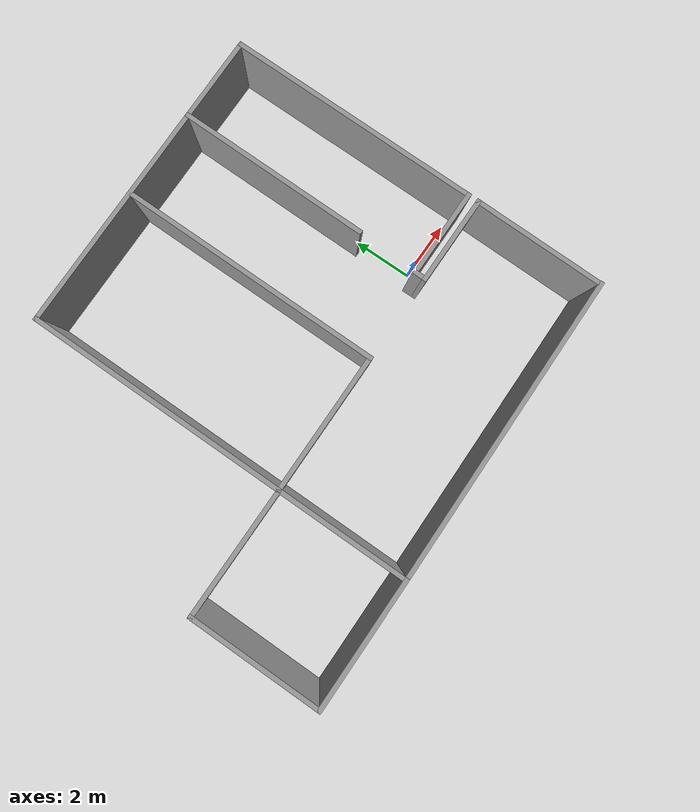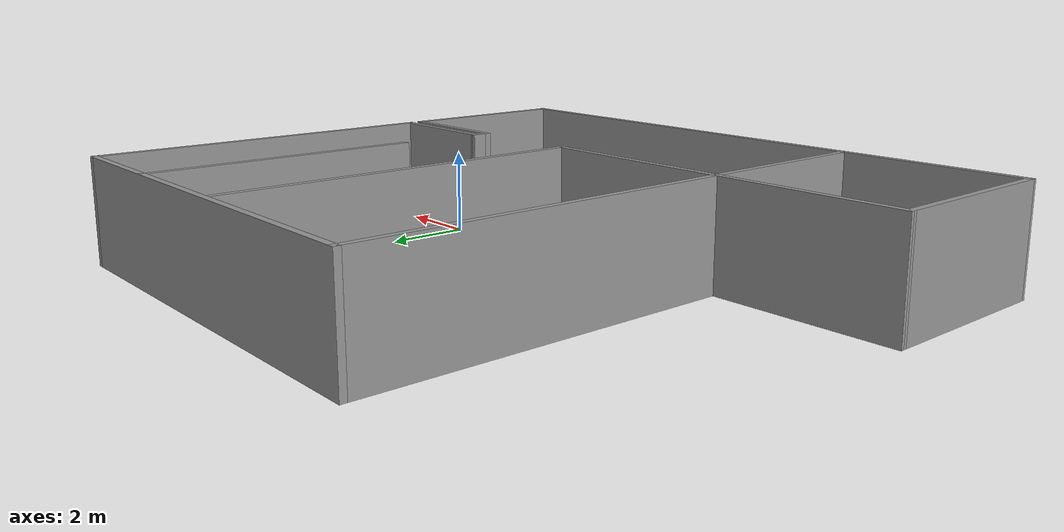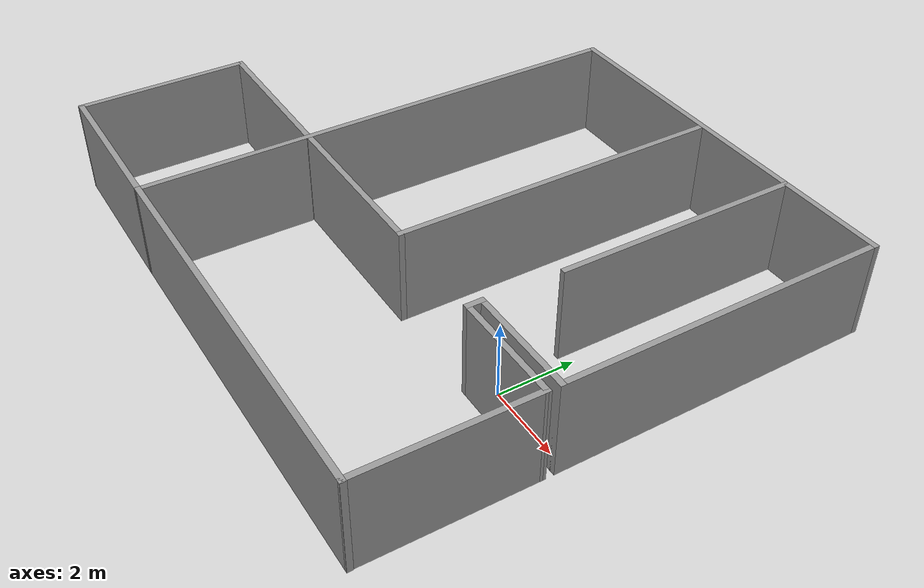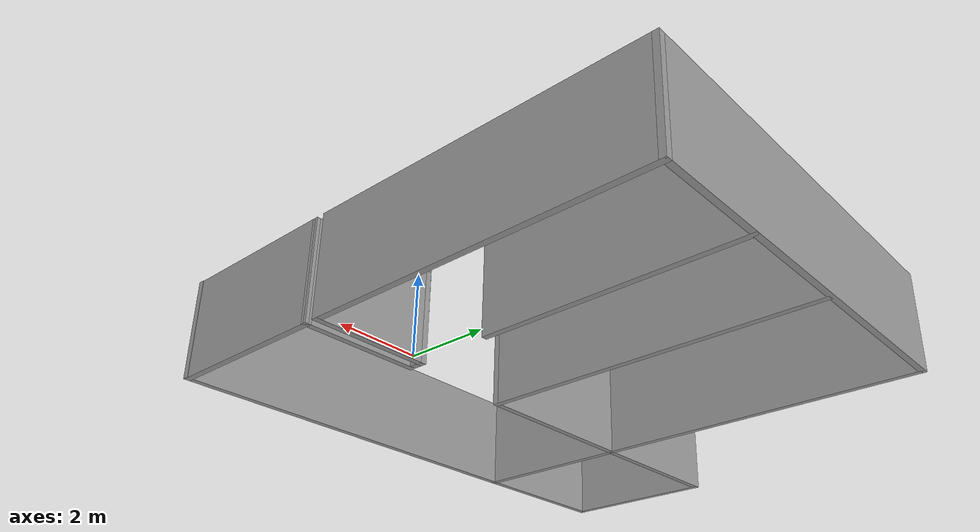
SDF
<?xml version='1.0'?>
<sdf version='1.7'>
  <model name='apartment'>
    <pose>-4.87714 1.59994 0 0 -0 0</pose>
    <link name='Wall_0'>
      <collision name='Wall_0_Collision'>
        <geometry>
          <box>
            <size>10.4847 0.15 2.5</size>
          </box>
        </geometry>
        <pose>0 0 1.25 0 -0 0</pose>
      </collision>
      <visual name='Wall_0_Visual'>
        <pose>0 0 1.25 0 -0 0</pose>
        <geometry>
          <box>
            <size>10.4847 0.15 2.5</size>
          </box>
        </geometry>
        <material>
          <script>
            <uri>file://media/materials/scripts/gazebo.material</uri>
            <name>Gazebo/Grey</name>
          </script>
          <ambient>1 1 1 1</ambient>
        </material>
        <meta>
          <layer>0</layer>
        </meta>
      </visual>
      <pose>2.1344 -6.52473 0 0 -0 0.004798</pose>
    </link>
    <link name='Wall_1'>
      <collision name='Wall_1_Collision'>
        <geometry>
          <box>
            <size>4.5 0.15 2.5</size>
          </box>
        </geometry>
        <pose>0 0 1.25 0 -0 0</pose>
      </collision>
      <visual name='Wall_1_Visual'>
        <pose>0 0 1.25 0 -0 0</pose>
        <geometry>
          <box>
            <size>4.5 0.15 2.5</size>
          </box>
        </geometry>
        <material>
          <script>
            <uri>file://media/materials/scripts/gazebo.material</uri>
            <name>Gazebo/Grey</name>
          </script>
          <ambient>1 1 1 1</ambient>
        </material>
        <meta>
          <layer>0</layer>
        </meta>
      </visual>
      <pose>7.30172 -4.32494 0 0 -0 1.56371</pose>
    </link>
    <link name='Wall_11'>
      <collision name='Wall_11_Collision'>
        <geometry>
          <box>
            <size>6.44159 0.15 2.5</size>
          </box>
        </geometry>
        <pose>0 0 1.25 0 -0 0</pose>
      </collision>
      <visual name='Wall_11_Visual'>
        <pose>0 0 1.25 0 -0 0</pose>
        <geometry>
          <box>
            <size>6.44159 0.15 2.5</size>
          </box>
        </geometry>
        <material>
          <script>
            <uri>file://media/materials/scripts/gazebo.material</uri>
            <name>Gazebo/Grey</name>
          </script>
          <ambient>1 1 1 1</ambient>
        </material>
        <meta>
          <layer>0</layer>
        </meta>
      </visual>
      <pose>4.55156 3.39402 0 0 -0 1.56778</pose>
    </link>
    <link name='Wall_13'>
      <collision name='Wall_13_Collision'>
        <geometry>
          <box>
            <size>8.75 0.15 2.5</size>
          </box>
        </geometry>
        <pose>0 0 1.25 0 -0 0</pose>
      </collision>
      <visual name='Wall_13_Visual'>
        <pose>0 0 1.25 0 -0 0</pose>
        <geometry>
          <box>
            <size>8.75 0.15 2.5</size>
          </box>
        </geometry>
        <material>
          <script>
            <uri>file://media/materials/scripts/gazebo.material</uri>
            <name>Gazebo/Grey</name>
          </script>
          <ambient>1 1 1 1</ambient>
        </material>
        <meta>
          <layer>0</layer>
        </meta>
      </visual>
      <pose>1.60774 2.15208 0 0 -0 -1.5708</pose>
    </link>
    <link name='Wall_14'>
      <collision name='Wall_14_Collision'>
        <geometry>
          <box>
            <size>4.75 0.15 2.5</size>
          </box>
        </geometry>
        <pose>0 0 1.25 0 -0 0</pose>
      </collision>
      <visual name='Wall_14_Visual'>
        <pose>0 0 1.25 0 -0 0</pose>
        <geometry>
          <box>
            <size>4.75 0.15 2.5</size>
          </box>
        </geometry>
        <material>
          <script>
            <uri>file://media/materials/scripts/gazebo.material</uri>
            <name>Gazebo/Grey</name>
          </script>
          <ambient>1 1 1 1</ambient>
        </material>
        <meta>
          <layer>0</layer>
        </meta>
      </visual>
      <pose>-0.692261 -2.14792 0 0 -0 3.14159</pose>
    </link>
    <link name='Wall_16'>
      <collision name='Wall_16_Collision'>
        <geometry>
          <box>
            <size>4.43518 0.15 2.5</size>
          </box>
        </geometry>
        <pose>0 0 1.25 0 -0 0</pose>
      </collision>
      <visual name='Wall_16_Visual'>
        <pose>0 0 1.25 0 -0 0</pose>
        <geometry>
          <box>
            <size>4.43518 0.15 2.5</size>
          </box>
        </geometry>
        <material>
          <script>
            <uri>file://media/materials/scripts/gazebo.material</uri>
            <name>Gazebo/Grey</name>
          </script>
          <ambient>1 1 1 1</ambient>
        </material>
        <meta>
          <layer>0</layer>
        </meta>
      </visual>
      <pose>-5.17471 -2.14767 0 0 -0 3.13622</pose>
    </link>
    <link name='Wall_17'>
      <collision name='Wall_17_Collision'>
        <geometry>
          <box>
            <size>4.55268 0.15 2.5</size>
          </box>
        </geometry>
        <pose>0 0 1.25 0 -0 0</pose>
      </collision>
      <visual name='Wall_17_Visual'>
        <pose>0 0 1.25 0 -0 0</pose>
        <geometry>
          <box>
            <size>4.55268 0.15 2.5</size>
          </box>
        </geometry>
        <material>
          <script>
            <uri>file://media/materials/scripts/gazebo.material</uri>
            <name>Gazebo/Grey</name>
          </script>
          <ambient>1 1 1 1</ambient>
        </material>
        <meta>
          <layer>0</layer>
        </meta>
      </visual>
      <pose>-7.3125 -4.34134 0 0 -0 -1.56863</pose>
    </link>
    <link name='Wall_18'>
      <collision name='Wall_18_Collision'>
        <geometry>
          <box>
            <size>4.42488 0.15 2.5</size>
          </box>
        </geometry>
        <pose>0 0 1.25 0 -0 0</pose>
      </collision>
      <visual name='Wall_18_Visual'>
        <pose>0 0 1.25 0 -0 0</pose>
        <geometry>
          <box>
            <size>4.42488 0.15 2.5</size>
          </box>
        </geometry>
        <material>
          <script>
            <uri>file://media/materials/scripts/gazebo.material</uri>
            <name>Gazebo/Grey</name>
          </script>
          <ambient>1 1 1 1</ambient>
        </material>
        <meta>
          <layer>0</layer>
        </meta>
      </visual>
      <pose>-5.17029 -6.54631 0 0 -0 -0.001698</pose>
    </link>
    <link name='Wall_2'>
      <collision name='Wall_2_Collision'>
        <geometry>
          <box>
            <size>3 0.15 2.5</size>
          </box>
        </geometry>
        <pose>0 0 1.25 0 -0 0</pose>
      </collision>
      <visual name='Wall_2_Visual'>
        <pose>0 0 1.25 0 -0 0</pose>
        <geometry>
          <box>
            <size>3 0.15 2.5</size>
          </box>
        </geometry>
        <material>
          <script>
            <uri>file://media/materials/scripts/gazebo.material</uri>
            <name>Gazebo/Grey</name>
          </script>
          <ambient>1 1 1 1</ambient>
        </material>
        <meta>
          <layer>0</layer>
        </meta>
      </visual>
      <pose>5.89214 -2.14994 0 0 -0 3.14159</pose>
    </link>
    <link name='Wall_5'>
      <collision name='Wall_5_Collision'>
        <geometry>
          <box>
            <size>0.5 0.15 2.5</size>
          </box>
        </geometry>
        <pose>0 0 1.25 0 -0 0</pose>
      </collision>
      <visual name='Wall_5_Visual'>
        <pose>0 0 1.25 0 -0 0</pose>
        <geometry>
          <box>
            <size>0.5 0.15 2.5</size>
          </box>
        </geometry>
        <material>
          <script>
            <uri>file://media/materials/scripts/gazebo.material</uri>
            <name>Gazebo/Grey</name>
          </script>
          <ambient>1 1 1 1</ambient>
        </material>
        <meta>
          <layer>0</layer>
        </meta>
      </visual>
      <pose>4.46714 -1.97494 0 0 -0 1.5708</pose>
    </link>
    <link name='Wall_6'>
      <collision name='Wall_6_Collision'>
        <geometry>
          <box>
            <size>3 0.15 2.5</size>
          </box>
        </geometry>
        <pose>0 0 1.25 0 -0 0</pose>
      </collision>
      <visual name='Wall_6_Visual'>
        <pose>0 0 1.25 0 -0 0</pose>
        <geometry>
          <box>
            <size>3 0.15 2.5</size>
          </box>
        </geometry>
        <material>
          <script>
            <uri>file://media/materials/scripts/gazebo.material</uri>
            <name>Gazebo/Grey</name>
          </script>
          <ambient>1 1 1 1</ambient>
        </material>
        <meta>
          <layer>0</layer>
        </meta>
      </visual>
      <pose>5.89214 -1.79994 0 0 -0 0</pose>
    </link>
    <link name='Wall_7'>
      <collision name='Wall_7_Collision'>
        <geometry>
          <box>
            <size>8.5 0.15 2.5</size>
          </box>
        </geometry>
        <pose>0 0 1.25 0 -0 0</pose>
      </collision>
      <visual name='Wall_7_Visual'>
        <pose>0 0 1.25 0 -0 0</pose>
        <geometry>
          <box>
            <size>8.5 0.15 2.5</size>
          </box>
        </geometry>
        <material>
          <script>
            <uri>file://media/materials/scripts/gazebo.material</uri>
            <name>Gazebo/Grey</name>
          </script>
          <ambient>1 1 1 1</ambient>
        </material>
        <meta>
          <layer>0</layer>
        </meta>
      </visual>
      <pose>7.31714 2.37506 0 0 -0 1.5708</pose>
    </link>
    <link name='Wall_8'>
      <collision name='Wall_8_Collision'>
        <geometry>
          <box>
            <size>10.5 0.15 2.5</size>
          </box>
        </geometry>
        <pose>0 0 1.25 0 -0 0</pose>
      </collision>
      <visual name='Wall_8_Visual'>
        <pose>0 0 1.25 0 -0 0</pose>
        <geometry>
          <box>
            <size>10.5 0.15 2.5</size>
          </box>
        </geometry>
        <material>
          <script>
            <uri>file://media/materials/scripts/gazebo.material</uri>
            <name>Gazebo/Grey</name>
          </script>
          <ambient>1 1 1 1</ambient>
        </material>
        <meta>
          <layer>0</layer>
        </meta>
      </visual>
      <pose>2.14214 6.55006 0 0 -0 3.14159</pose>
    </link>
    <link name='Wall_9'>
      <collision name='Wall_9_Collision'>
        <geometry>
          <box>
            <size>13.25 0.15 2.5</size>
          </box>
        </geometry>
        <pose>0 0 1.25 0 -0 0</pose>
      </collision>
      <visual name='Wall_9_Visual'>
        <pose>0 0 1.25 0 -0 0</pose>
        <geometry>
          <box>
            <size>13.25 0.15 2.5</size>
          </box>
        </geometry>
        <material>
          <script>
            <uri>file://media/materials/scripts/gazebo.material</uri>
            <name>Gazebo/Grey</name>
          </script>
          <ambient>1 1 1 1</ambient>
        </material>
        <meta>
          <layer>0</layer>
        </meta>
      </visual>
      <pose>-3.03286 6.3e-05 0 0 -0 -1.5708</pose>
    </link>
    <static>1</static>
  </model>
</sdf>
